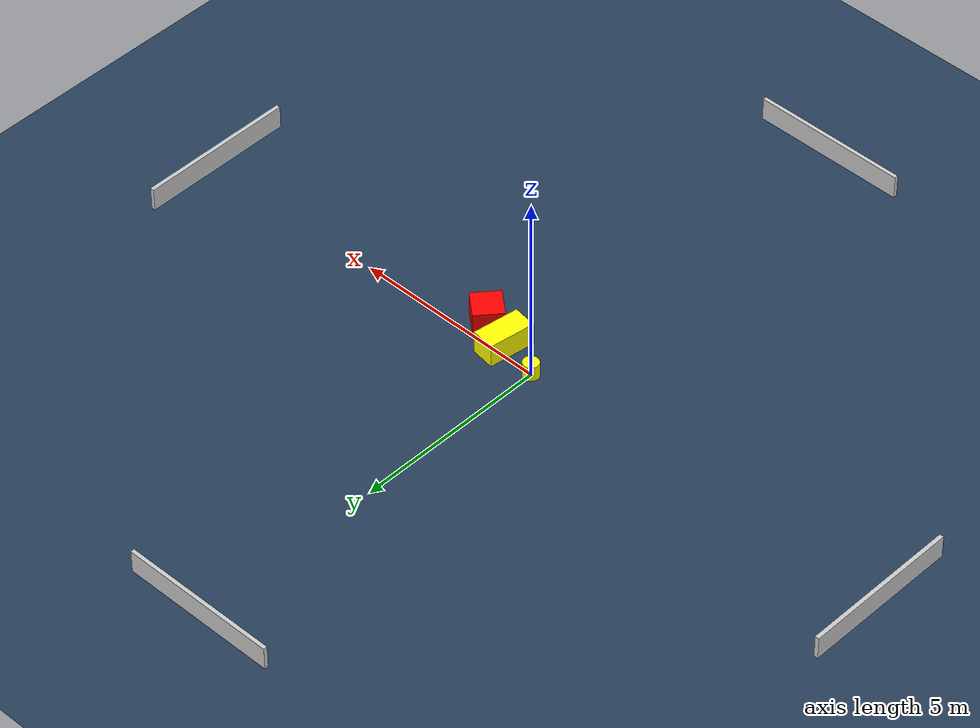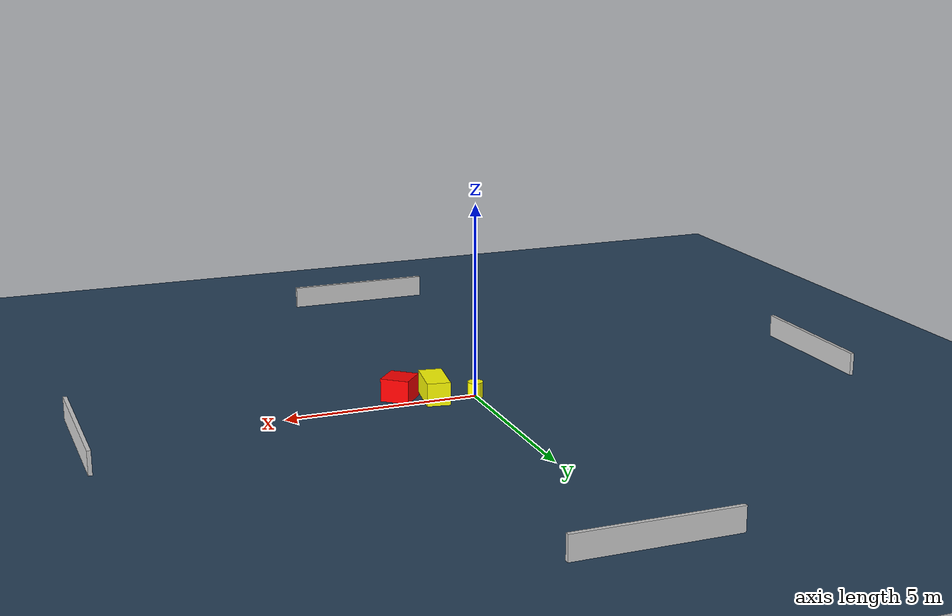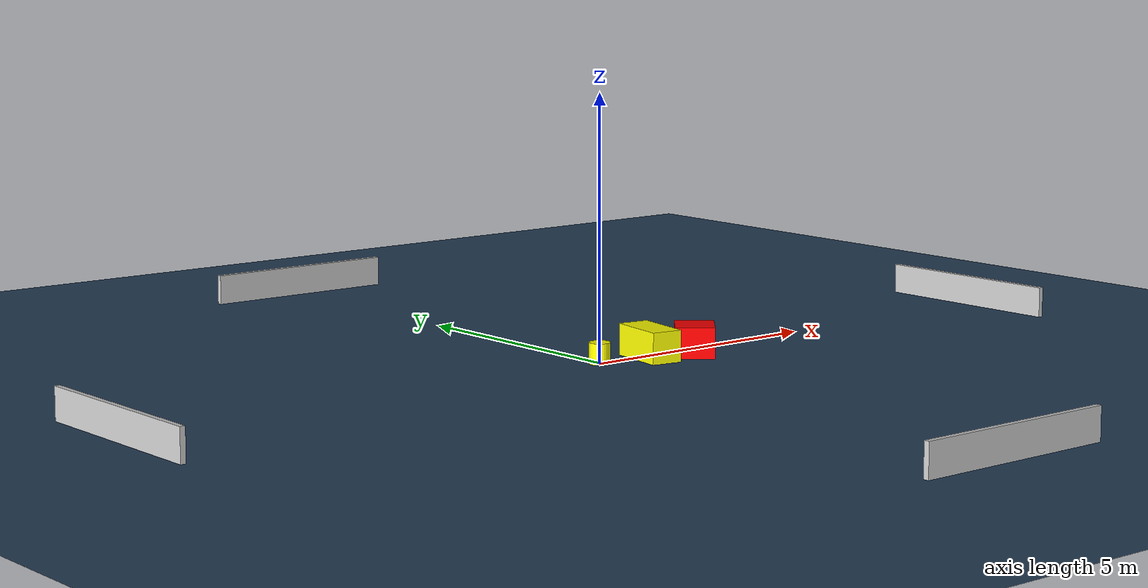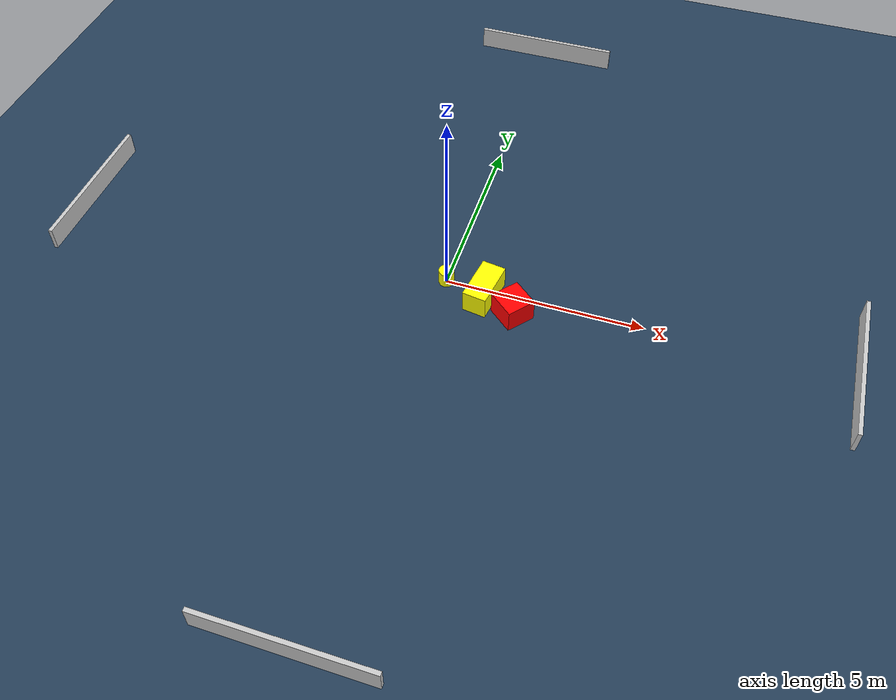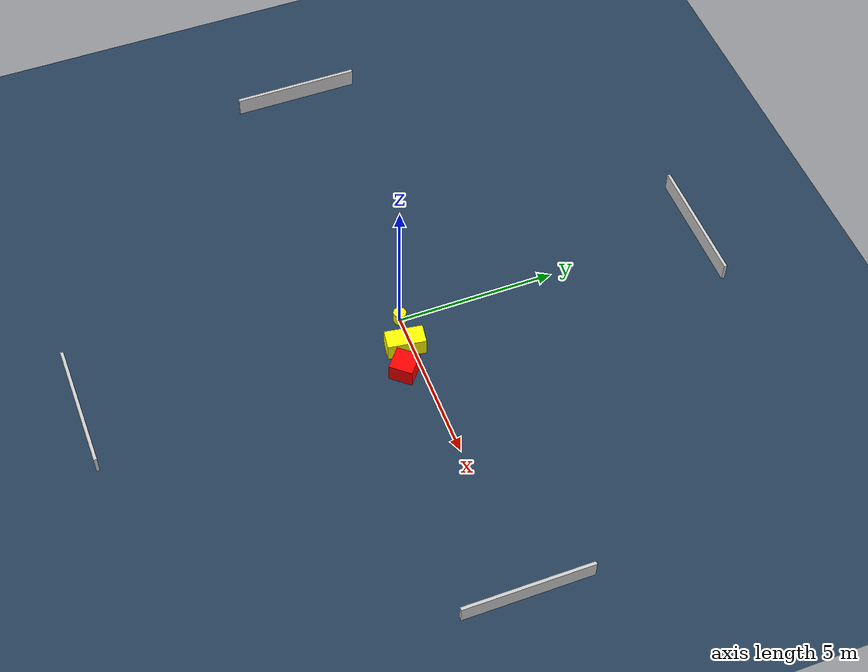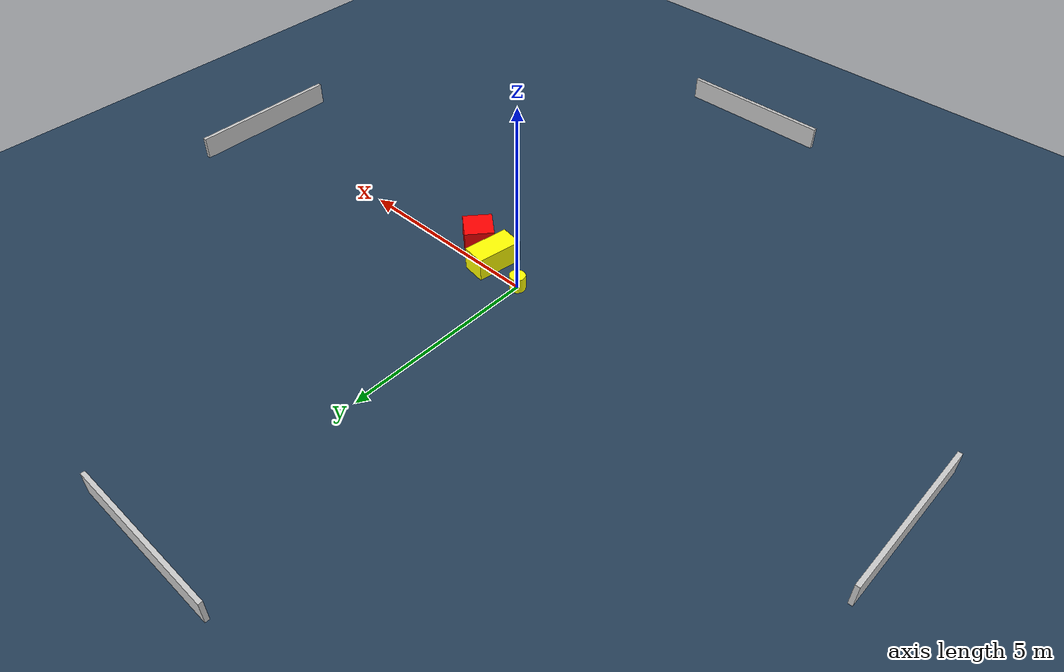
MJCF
<?xml version="1.0" ?>
<mujoco model="generated_environment">
  <option timestep="0.01" integrator="RK4" cone="elliptic"/>
  <default>
    <geom density="1"/>
  </default>
  <asset>
    <texture builtin="gradient" height="3072" name="skybox" rgb1="0.3 0.5 0.7" rgb2="0 0 0" type="skybox" width="512"/>
    <texture builtin="checker" height="300" name="groundplane" rgb1="0.2 0.3 0.4" rgb2="0.1 0.2 0.3" type="2d" width="300"/>
    <material name="groundplane" reflectance="0.2" texrepeat="5 5" texture="groundplane"/>
  </asset>
  <worldbody>
    <light dir="0 0 -1" directional="true" pos="0 0 1.5"/>
    <geom condim="3" friction="0.5 0.005 0.001" material="groundplane" name="floor" pos="0 0 0" size="0 0 0.05" type="plane"/>
    <body name="walls">
      <geom name="wall_1" condim="4" pos="-10.0 0.0 0.3" rgba="0.800000011920929 0.800000011920929 0.800000011920929 1.0" size="0.05 2.0 0.3" type="box"/>
      <geom name="wall_2" condim="4" pos="10.0 0.0 0.3" rgba="0.800000011920929 0.800000011920929 0.800000011920929 1.0" size="0.05 2.0 0.3" type="box"/>
      <geom name="wall_3" condim="4" pos="0.0 -10.0 0.3" rgba="0.800000011920929 0.800000011920929 0.800000011920929 1.0" size="2.0 0.05 0.3" type="box"/>
      <geom name="wall_4" condim="4" pos="0.0 10.0 0.3" rgba="0.800000011920929 0.800000011920929 0.800000011920929 1.0" size="2.0 0.05 0.3" type="box"/>
    </body>
    <body name="robot">
      <joint name="joint_x" type="slide" pos="0 0 0" axis="1 0 0"/>
      <joint name="joint_y" type="slide" pos="0 0 0" axis="0 1 0"/>
      <geom name="robot" type="cylinder" pos="0.0 0.0 0.2" size="0.2 0.2 0.0" mass="5.0" friction="1.0 0.005 0.0001" condim="4" rgba="1.0 1.0 0.0 1.0"/>
    </body>
    <body name="obstacle_1_movable">
      <geom name="obstacle_1_movable" condim="4" pos="1.0349815219912137 -0.21640866994372684 0.3" euler="0 0 261.42746401754334" friction="0.0 0.005 0.001" rgba="1.0 1.0 0.0 1.0" size="0.5947143479560908 0.30348401321405555 0.3" type="box" mass="0.1"/>
      <joint type="free"/>
    </body>
    <body name="obstacle_2_static">
      <geom name="obstacle_2_static" condim="4" pos="1.8566746196694546 -0.544630334891392 0.3" euler="0 0 229.6742007282627" friction="0.0 0.005 0.001" rgba="1.0 0.0 0.0 1.0" size="0.371348778787446 0.3743240645919095 0.3" type="box"/>
    </body>
  </worldbody>
  <actuator>
    <motor name="actuator_x" joint="joint_x" gear="1" ctrlrange="-1 1"/>
    <motor name="actuator_y" joint="joint_y" gear="1" ctrlrange="-1 1"/>
  </actuator>
</mujoco>
